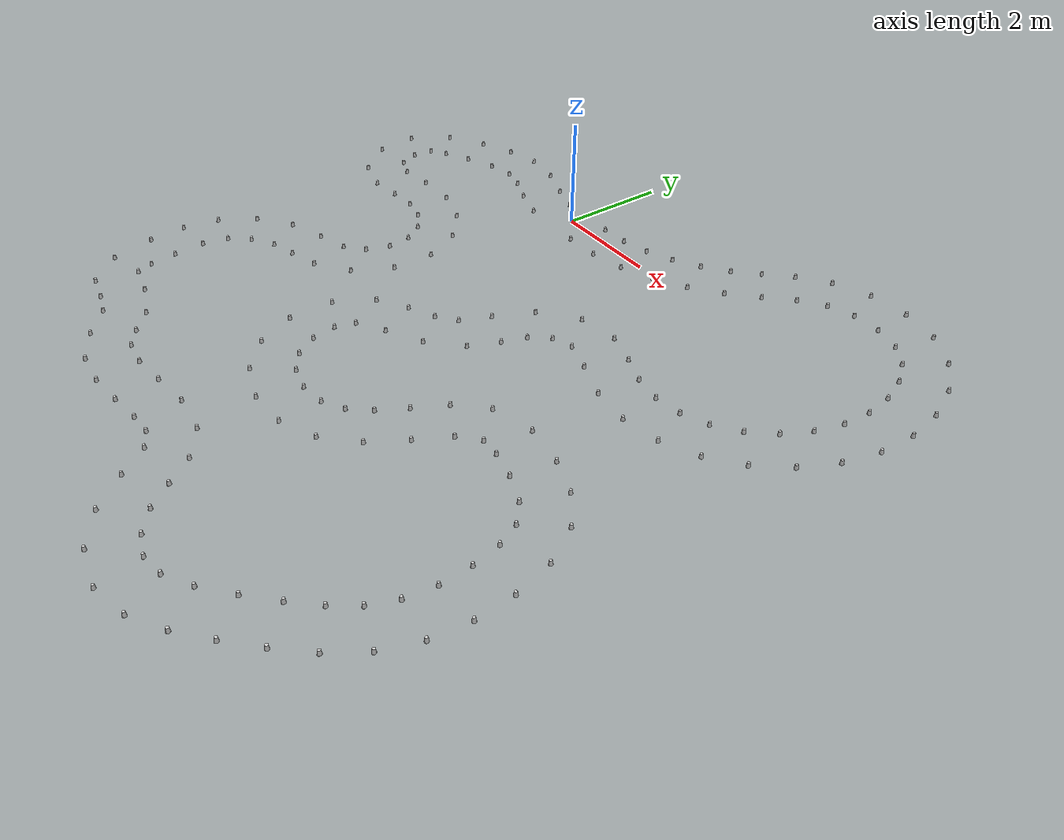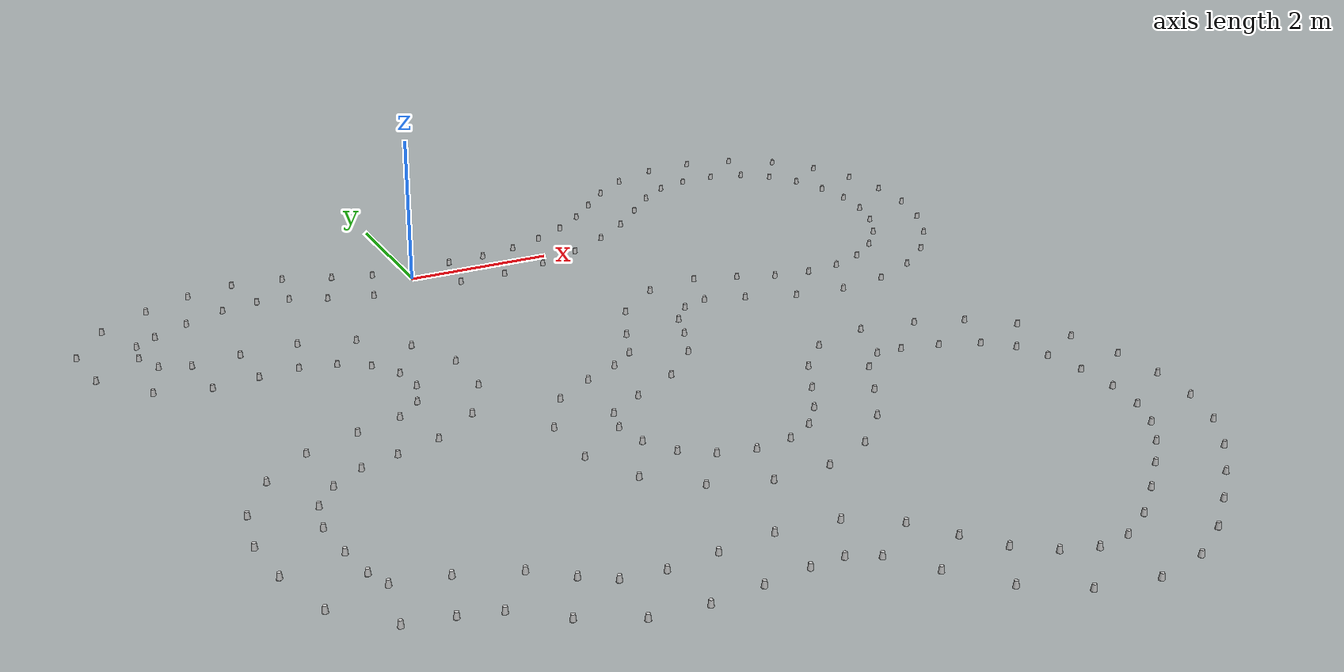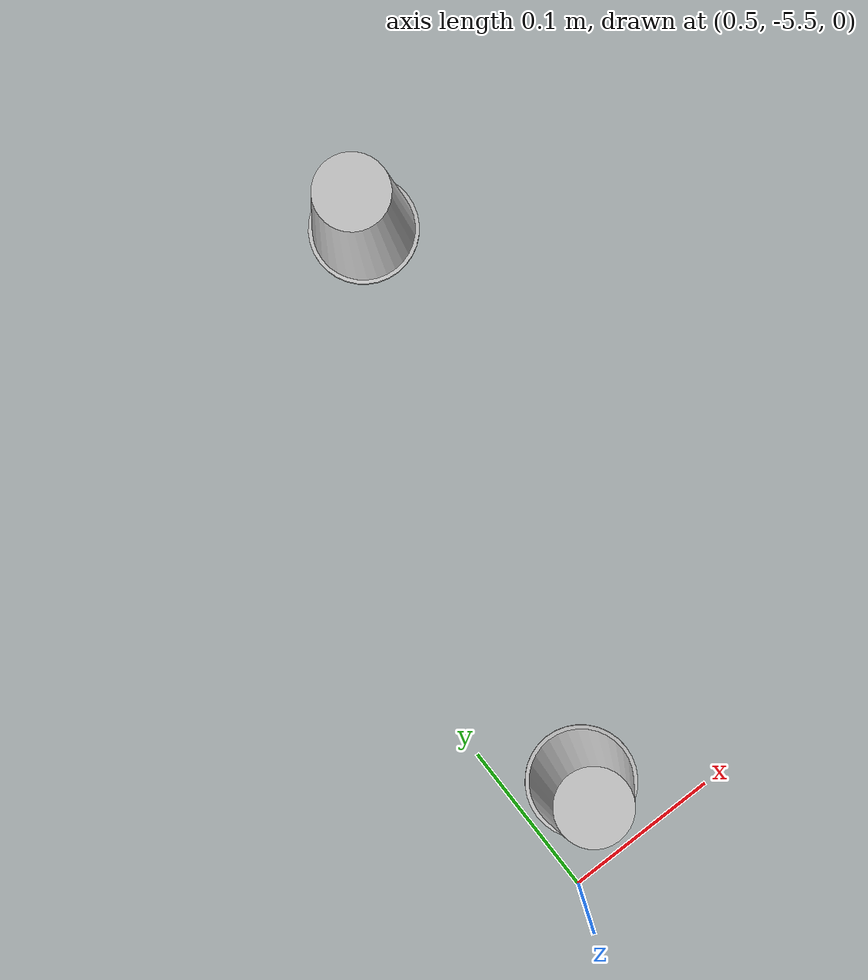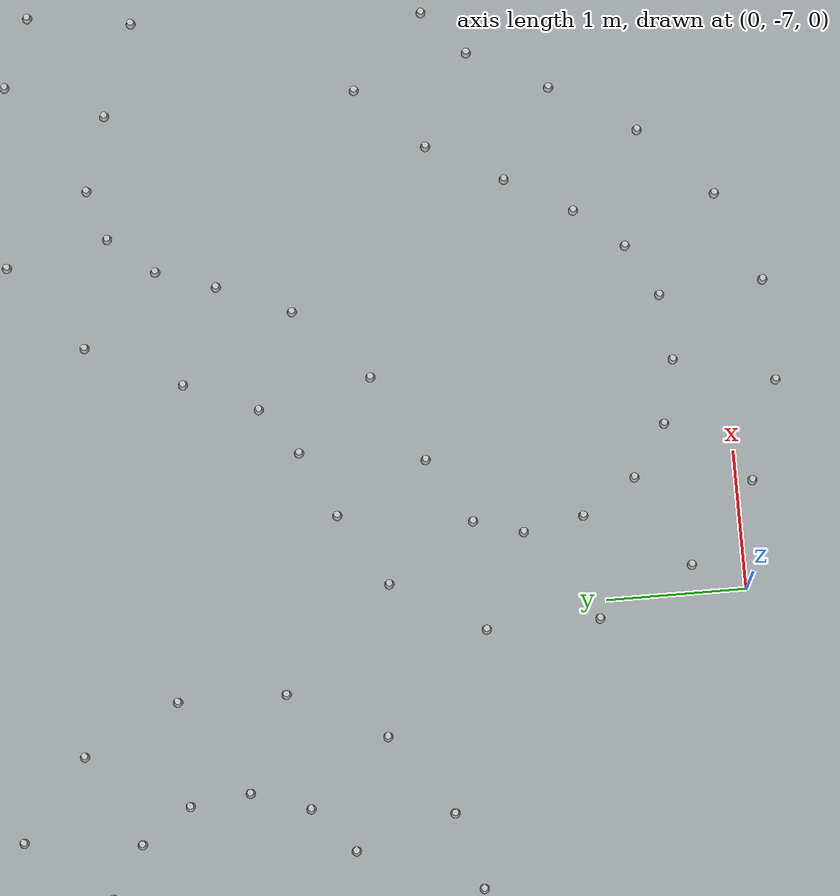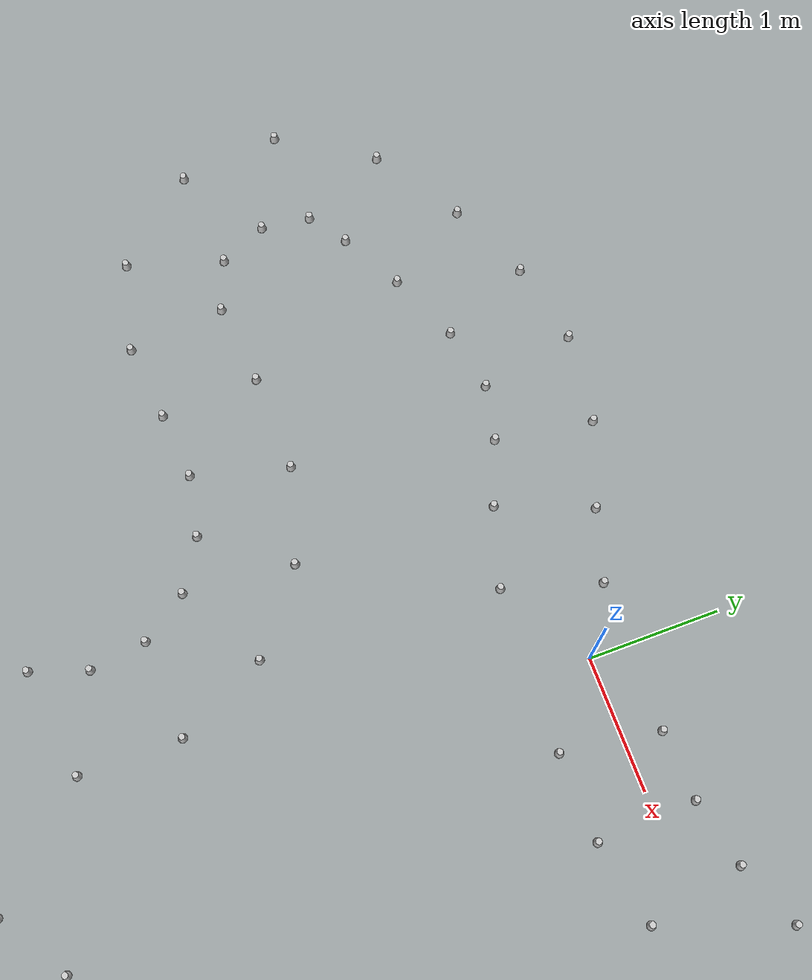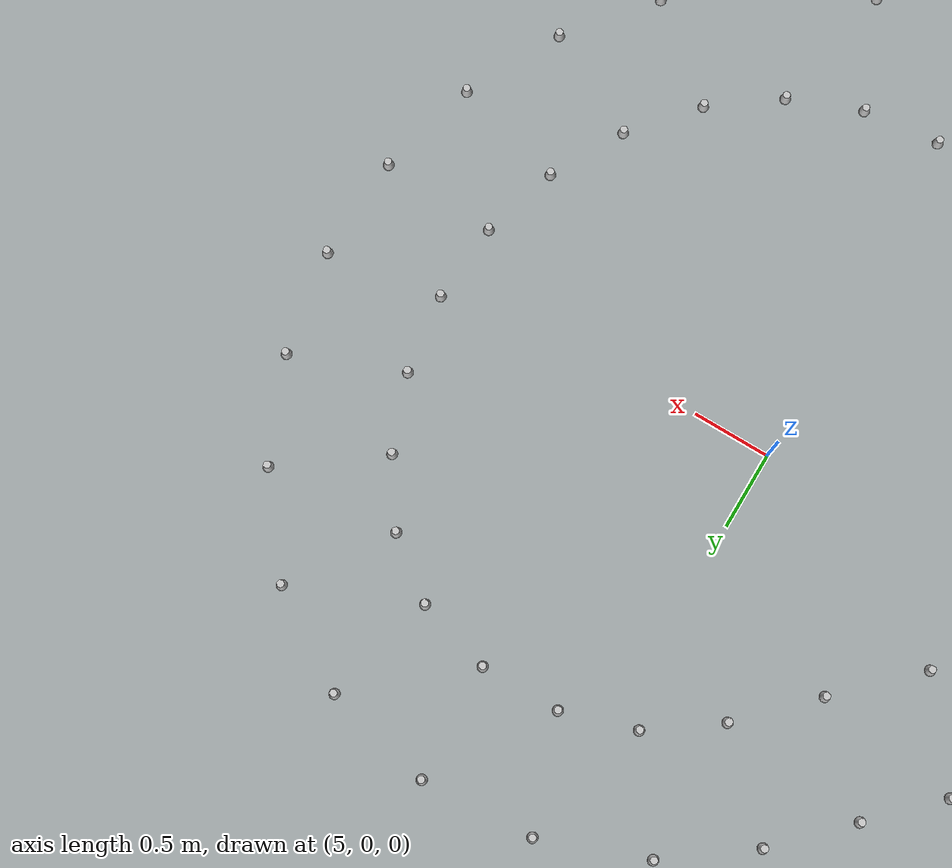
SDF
<?xml version='1.0' encoding='UTF-8'?>
<sdf version="1.4">
  <model name="some track">
    <include>
      <uri>model://cone_yellow</uri>
      <pose>0.5456064832074609 -0.45885860993376065 0 0 0 0</pose>
      <name>cone_right_0</name>
    </include>
    <include>
      <uri>model://cone_yellow</uri>
      <pose>1.2058946451928227 -0.44259092061318955 0 0 0 0</pose>
      <name>cone_right_1</name>
    </include>
    <include>
      <uri>model://cone_yellow</uri>
      <pose>1.8462565523455987 -0.3158791610961156 0 0 0 0</pose>
      <name>cone_right_2</name>
    </include>
    <include>
      <uri>model://cone_yellow</uri>
      <pose>2.4551261243802767 -0.08944282627658051 0 0 0 0</pose>
      <name>cone_right_3</name>
    </include>
    <include>
      <uri>model://cone_yellow</uri>
      <pose>3.022348377495846 0.22613101339088998 0 0 0 0</pose>
      <name>cone_right_4</name>
    </include>
    <include>
      <uri>model://cone_yellow</uri>
      <pose>3.5385810489900464 0.620887101249452 0 0 0 0</pose>
      <name>cone_right_5</name>
    </include>
    <include>
      <uri>model://cone_yellow</uri>
      <pose>3.9968567595910898 1.0767456319739033 0 0 0 0</pose>
      <name>cone_right_6</name>
    </include>
    <include>
      <uri>model://cone_yellow</uri>
      <pose>4.413884017450792 1.5049585792763076 0 0 0 0</pose>
      <name>cone_right_7</name>
    </include>
    <include>
      <uri>model://cone_yellow</uri>
      <pose>4.837387571227756 1.8125826950286892 0 0 0 0</pose>
      <name>cone_right_8</name>
    </include>
    <include>
      <uri>model://cone_yellow</uri>
      <pose>5.3068601934235655 1.9595061470124564 0 0 0 0</pose>
      <name>cone_right_9</name>
    </include>
    <include>
      <uri>model://cone_yellow</uri>
      <pose>5.819877320713445 1.9676282042649793 0 0 0 0</pose>
      <name>cone_right_10</name>
    </include>
    <include>
      <uri>model://cone_yellow</uri>
      <pose>6.303811697080914 1.829182384310644 0 0 0 0</pose>
      <name>cone_right_11</name>
    </include>
    <include>
      <uri>model://cone_yellow</uri>
      <pose>6.677501635294466 1.5498988169844365 0 0 0 0</pose>
      <name>cone_right_12</name>
    </include>
    <include>
      <uri>model://cone_yellow</uri>
      <pose>6.948446406135672 1.1561583997995557 0 0 0 0</pose>
      <name>cone_right_13</name>
    </include>
    <include>
      <uri>model://cone_yellow</uri>
      <pose>7.130245594376159 0.6777425470140594 0 0 0 0</pose>
      <name>cone_right_14</name>
    </include>
    <include>
      <uri>model://cone_yellow</uri>
      <pose>7.206664436980377 0.16683228925392393 0 0 0 0</pose>
      <name>cone_right_15</name>
    </include>
    <include>
      <uri>model://cone_yellow</uri>
      <pose>7.172176745271697 -0.3462398290659785 0 0 0 0</pose>
      <name>cone_right_16</name>
    </include>
    <include>
      <uri>model://cone_yellow</uri>
      <pose>7.027874995089416 -0.8456869484847873 0 0 0 0</pose>
      <name>cone_right_17</name>
    </include>
    <include>
      <uri>model://cone_yellow</uri>
      <pose>6.778135353807146 -1.3134792045880717 0 0 0 0</pose>
      <name>cone_right_18</name>
    </include>
    <include>
      <uri>model://cone_yellow</uri>
      <pose>6.43682481530975 -1.7195088541264256 0 0 0 0</pose>
      <name>cone_right_19</name>
    </include>
    <include>
      <uri>model://cone_yellow</uri>
      <pose>6.023866609306633 -2.0288480070229897 0 0 0 0</pose>
      <name>cone_right_20</name>
    </include>
    <include>
      <uri>model://cone_yellow</uri>
      <pose>5.561544178993173 -2.2127234131991527 0 0 0 0</pose>
      <name>cone_right_21</name>
    </include>
    <include>
      <uri>model://cone_yellow</uri>
      <pose>5.0681939940556555 -2.265051066441236 0 0 0 0</pose>
      <name>cone_right_22</name>
    </include>
    <include>
      <uri>model://cone_yellow</uri>
      <pose>4.566206799126477 -2.184642251498726 0 0 0 0</pose>
      <name>cone_right_23</name>
    </include>
    <include>
      <uri>model://cone_yellow</uri>
      <pose>4.067908418143249 -1.9850667389844467 0 0 0 0</pose>
      <name>cone_right_24</name>
    </include>
    <include>
      <uri>model://cone_yellow</uri>
      <pose>3.484192974822731 -1.8028277750342239 0 0 0 0</pose>
      <name>cone_right_25</name>
    </include>
    <include>
      <uri>model://cone_yellow</uri>
      <pose>2.7470825966537564 -1.9073172078231235 0 0 0 0</pose>
      <name>cone_right_26</name>
    </include>
    <include>
      <uri>model://cone_yellow</uri>
      <pose>2.1191800385688686 -2.4212307791150547 0 0 0 0</pose>
      <name>cone_right_27</name>
    </include>
    <include>
      <uri>model://cone_yellow</uri>
      <pose>1.7973649492020427 -3.104844454724684 0 0 0 0</pose>
      <name>cone_right_28</name>
    </include>
    <include>
      <uri>model://cone_yellow</uri>
      <pose>1.5741543913362073 -3.633427410084835 0 0 0 0</pose>
      <name>cone_right_29</name>
    </include>
    <include>
      <uri>model://cone_yellow</uri>
      <pose>1.2379331491129555 -3.896081157973365 0 0 0 0</pose>
      <name>cone_right_30</name>
    </include>
    <include>
      <uri>model://cone_yellow</uri>
      <pose>0.7654489003605556 -4.132633005867363 0 0 0 0</pose>
      <name>cone_right_31</name>
    </include>
    <include>
      <uri>model://cone_yellow</uri>
      <pose>0.24301136493267722 -4.463987009997558 0 0 0 0</pose>
      <name>cone_right_32</name>
    </include>
    <include>
      <uri>model://cone_yellow</uri>
      <pose>-0.13693885138106562 -5.1300015562304795 0 0 0 0</pose>
      <name>cone_right_33</name>
    </include>
    <include>
      <uri>model://cone_yellow</uri>
      <pose>-0.12433864593090588 -5.942980782134854 0 0 0 0</pose>
      <name>cone_right_34</name>
    </include>
    <include>
      <uri>model://cone_yellow</uri>
      <pose>0.20802041270777255 -6.628476398485541 0 0 0 0</pose>
      <name>cone_right_35</name>
    </include>
    <include>
      <uri>model://cone_yellow</uri>
      <pose>0.7804151812215796 -7.112048927235949 0 0 0 0</pose>
      <name>cone_right_36</name>
    </include>
    <include>
      <uri>model://cone_yellow</uri>
      <pose>1.494758312628898 -7.342594785150698 0 0 0 0</pose>
      <name>cone_right_37</name>
    </include>
    <include>
      <uri>model://cone_yellow</uri>
      <pose>2.2277120250991547 -7.313941708037844 0 0 0 0</pose>
      <name>cone_right_38</name>
    </include>
    <include>
      <uri>model://cone_yellow</uri>
      <pose>2.883687169097593 -7.023222759198303 0 0 0 0</pose>
      <name>cone_right_39</name>
    </include>
    <include>
      <uri>model://cone_yellow</uri>
      <pose>3.391840042198688 -6.508287281729905 0 0 0 0</pose>
      <name>cone_right_40</name>
    </include>
    <include>
      <uri>model://cone_yellow</uri>
      <pose>3.755498005441392 -5.898661309648358 0 0 0 0</pose>
      <name>cone_right_41</name>
    </include>
    <include>
      <uri>model://cone_yellow</uri>
      <pose>4.056619348948791 -5.327059766262954 0 0 0 0</pose>
      <name>cone_right_42</name>
    </include>
    <include>
      <uri>model://cone_yellow</uri>
      <pose>4.378523817275573 -5.025008410567977 0 0 0 0</pose>
      <name>cone_right_43</name>
    </include>
    <include>
      <uri>model://cone_yellow</uri>
      <pose>4.7298322353679545 -5.0392873106626475 0 0 0 0</pose>
      <name>cone_right_44</name>
    </include>
    <include>
      <uri>model://cone_yellow</uri>
      <pose>5.22955984500444 -5.151352718827979 0 0 0 0</pose>
      <name>cone_right_45</name>
    </include>
    <include>
      <uri>model://cone_yellow</uri>
      <pose>5.738650956603024 -5.3475772746737835 0 0 0 0</pose>
      <name>cone_right_46</name>
    </include>
    <include>
      <uri>model://cone_yellow</uri>
      <pose>6.080286141864676 -5.641639547801639 0 0 0 0</pose>
      <name>cone_right_47</name>
    </include>
    <include>
      <uri>model://cone_yellow</uri>
      <pose>6.26160515785707 -6.038643930826328 0 0 0 0</pose>
      <name>cone_right_48</name>
    </include>
    <include>
      <uri>model://cone_yellow</uri>
      <pose>6.369585504750976 -6.547196199405659 0 0 0 0</pose>
      <name>cone_right_49</name>
    </include>
    <include>
      <uri>model://cone_yellow</uri>
      <pose>6.4004852734699655 -7.097055363427831 0 0 0 0</pose>
      <name>cone_right_50</name>
    </include>
    <include>
      <uri>model://cone_yellow</uri>
      <pose>6.33263786887288 -7.613296777532562 0 0 0 0</pose>
      <name>cone_right_51</name>
    </include>
    <include>
      <uri>model://cone_yellow</uri>
      <pose>6.155221306788474 -8.059435363374728 0 0 0 0</pose>
      <name>cone_right_52</name>
    </include>
    <include>
      <uri>model://cone_yellow</uri>
      <pose>5.875613266661654 -8.459933798175832 0 0 0 0</pose>
      <name>cone_right_53</name>
    </include>
    <include>
      <uri>model://cone_yellow</uri>
      <pose>5.506138369861098 -8.863554232161913 0 0 0 0</pose>
      <name>cone_right_54</name>
    </include>
    <include>
      <uri>model://cone_yellow</uri>
      <pose>5.0738466779528615 -9.286633320658073 0 0 0 0</pose>
      <name>cone_right_55</name>
    </include>
    <include>
      <uri>model://cone_yellow</uri>
      <pose>4.61614365849807 -9.69342345992484 0 0 0 0</pose>
      <name>cone_right_56</name>
    </include>
    <include>
      <uri>model://cone_yellow</uri>
      <pose>4.1646400719272005 -9.96927439329815 0 0 0 0</pose>
      <name>cone_right_57</name>
    </include>
    <include>
      <uri>model://cone_yellow</uri>
      <pose>3.740880312766757 -10.035912061499928 0 0 0 0</pose>
      <name>cone_right_58</name>
    </include>
    <include>
      <uri>model://cone_yellow</uri>
      <pose>3.3311578378597386 -9.905237356893815 0 0 0 0</pose>
      <name>cone_right_59</name>
    </include>
    <include>
      <uri>model://cone_yellow</uri>
      <pose>2.9224059592686342 -9.618274471106918 0 0 0 0</pose>
      <name>cone_right_60</name>
    </include>
    <include>
      <uri>model://cone_yellow</uri>
      <pose>2.5947389030488264 -9.211484030070826 0 0 0 0</pose>
      <name>cone_right_61</name>
    </include>
    <include>
      <uri>model://cone_yellow</uri>
      <pose>2.2505193561998706 -8.757577432429349 0 0 0 0</pose>
      <name>cone_right_62</name>
    </include>
    <include>
      <uri>model://cone_yellow</uri>
      <pose>1.6796294860141991 -8.397974180417005 0 0 0 0</pose>
      <name>cone_right_63</name>
    </include>
    <include>
      <uri>model://cone_yellow</uri>
      <pose>0.9208425258512882 -8.325272682727089 0 0 0 0</pose>
      <name>cone_right_64</name>
    </include>
    <include>
      <uri>model://cone_yellow</uri>
      <pose>0.2107769366097395 -8.415570412688277 0 0 0 0</pose>
      <name>cone_right_65</name>
    </include>
    <include>
      <uri>model://cone_yellow</uri>
      <pose>-0.41296001121357795 -8.487455345299399 0 0 0 0</pose>
      <name>cone_right_66</name>
    </include>
    <include>
      <uri>model://cone_yellow</uri>
      <pose>-0.9166483209916548 -8.437162206217451 0 0 0 0</pose>
      <name>cone_right_67</name>
    </include>
    <include>
      <uri>model://cone_yellow</uri>
      <pose>-1.2689445915224533 -8.214419488021447 0 0 0 0</pose>
      <name>cone_right_68</name>
    </include>
    <include>
      <uri>model://cone_yellow</uri>
      <pose>-1.683120898302488 -7.87977260530645 0 0 0 0</pose>
      <name>cone_right_69</name>
    </include>
    <include>
      <uri>model://cone_yellow</uri>
      <pose>-2.3691679313059137 -7.6355491587899 0 0 0 0</pose>
      <name>cone_right_70</name>
    </include>
    <include>
      <uri>model://cone_yellow</uri>
      <pose>-2.986047128807216 -7.517420589268996 0 0 0 0</pose>
      <name>cone_right_71</name>
    </include>
    <include>
      <uri>model://cone_yellow</uri>
      <pose>-3.10017226932711 -7.228075015219288 0 0 0 0</pose>
      <name>cone_right_72</name>
    </include>
    <include>
      <uri>model://cone_yellow</uri>
      <pose>-3.176875098534503 -6.742390078540103 0 0 0 0</pose>
      <name>cone_right_73</name>
    </include>
    <include>
      <uri>model://cone_yellow</uri>
      <pose>-3.2257520181388313 -6.173822116496898 0 0 0 0</pose>
      <name>cone_right_74</name>
    </include>
    <include>
      <uri>model://cone_yellow</uri>
      <pose>-3.129951341632468 -5.7157304039537165 0 0 0 0</pose>
      <name>cone_right_75</name>
    </include>
    <include>
      <uri>model://cone_yellow</uri>
      <pose>-2.856906052109254 -5.364987443702813 0 0 0 0</pose>
      <name>cone_right_76</name>
    </include>
    <include>
      <uri>model://cone_yellow</uri>
      <pose>-2.4502488161782883 -5.095410652153637 0 0 0 0</pose>
      <name>cone_right_77</name>
    </include>
    <include>
      <uri>model://cone_yellow</uri>
      <pose>-1.9796634962335529 -4.9614223458641185 0 0 0 0</pose>
      <name>cone_right_78</name>
    </include>
    <include>
      <uri>model://cone_yellow</uri>
      <pose>-1.428191227449242 -4.7989485654888995 0 0 0 0</pose>
      <name>cone_right_79</name>
    </include>
    <include>
      <uri>model://cone_yellow</uri>
      <pose>-0.846746247916777 -4.368065878466941 0 0 0 0</pose>
      <name>cone_right_80</name>
    </include>
    <include>
      <uri>model://cone_yellow</uri>
      <pose>-0.4870201034719848 -3.67162034038072 0 0 0 0</pose>
      <name>cone_right_81</name>
    </include>
    <include>
      <uri>model://cone_yellow</uri>
      <pose>-0.4807219038941586 -2.8971700714950885 0 0 0 0</pose>
      <name>cone_right_82</name>
    </include>
    <include>
      <uri>model://cone_yellow</uri>
      <pose>-0.8167281480581794 -2.2085032531145603 0 0 0 0</pose>
      <name>cone_right_83</name>
    </include>
    <include>
      <uri>model://cone_yellow</uri>
      <pose>-1.3942061783787 -1.7363668728425148 0 0 0 0</pose>
      <name>cone_right_84</name>
    </include>
    <include>
      <uri>model://cone_yellow</uri>
      <pose>-2.1059099284937304 -1.5165638098566785 0 0 0 0</pose>
      <name>cone_right_85</name>
    </include>
    <include>
      <uri>model://cone_yellow</uri>
      <pose>-2.8490392582125454 -1.5308155001748993 0 0 0 0</pose>
      <name>cone_right_86</name>
    </include>
    <include>
      <uri>model://cone_yellow</uri>
      <pose>-3.478679634203818 -1.5923590858250192 0 0 0 0</pose>
      <name>cone_right_87</name>
    </include>
    <include>
      <uri>model://cone_yellow</uri>
      <pose>-3.858527809501271 -1.4429491110652737 0 0 0 0</pose>
      <name>cone_right_88</name>
    </include>
    <include>
      <uri>model://cone_yellow</uri>
      <pose>-4.02155601637582 -1.078399943451833 0 0 0 0</pose>
      <name>cone_right_89</name>
    </include>
    <include>
      <uri>model://cone_yellow</uri>
      <pose>-3.9720223825860668 -0.7052060486986893 0 0 0 0</pose>
      <name>cone_right_90</name>
    </include>
    <include>
      <uri>model://cone_yellow</uri>
      <pose>-3.692313053726679 -0.5072340666029056 0 0 0 0</pose>
      <name>cone_right_91</name>
    </include>
    <include>
      <uri>model://cone_yellow</uri>
      <pose>-3.2274931384944554 -0.256100276171534 0 0 0 0</pose>
      <name>cone_right_92</name>
    </include>
    <include>
      <uri>model://cone_yellow</uri>
      <pose>-2.686824364436386 -0.026004664943616584 0 0 0 0</pose>
      <name>cone_right_93</name>
    </include>
    <include>
      <uri>model://cone_yellow</uri>
      <pose>-2.1949203218323614 0.06692758537695942 0 0 0 0</pose>
      <name>cone_right_94</name>
    </include>
    <include>
      <uri>model://cone_yellow</uri>
      <pose>-1.7744877222165913 -0.02523319167466226 0 0 0 0</pose>
      <name>cone_right_95</name>
    </include>
    <include>
      <uri>model://cone_yellow</uri>
      <pose>-1.296995522609946 -0.22359371372142287 0 0 0 0</pose>
      <name>cone_right_96</name>
    </include>
    <include>
      <uri>model://cone_yellow</uri>
      <pose>-0.7013015661670496 -0.4077788620240781 0 0 0 0</pose>
      <name>cone_right_97</name>
    </include>
    <include>
      <uri>model://cone_blue</uri>
      <pose>0.6542295605776837 0.2832337206172448 0 0 0 0</pose>
      <name>cone_left_0</name>
    </include>
    <include>
      <uri>model://cone_blue</uri>
      <pose>1.1806175893615702 0.3069830053264096 0 0 0 0</pose>
      <name>cone_left_1</name>
    </include>
    <include>
      <uri>model://cone_blue</uri>
      <pose>1.6945912378009893 0.41862586432174 0 0 0 0</pose>
      <name>cone_left_2</name>
    </include>
    <include>
      <uri>model://cone_blue</uri>
      <pose>2.1885358040202956 0.6115775736336951 0 0 0 0</pose>
      <name>cone_left_3</name>
    </include>
    <include>
      <uri>model://cone_blue</uri>
      <pose>2.6534254896593383 0.8791209848532175 0 0 0 0</pose>
      <name>cone_left_4</name>
    </include>
    <include>
      <uri>model://cone_blue</uri>
      <pose>3.079421775259224 1.2139071357735678 0 0 0 0</pose>
      <name>cone_left_5</name>
    </include>
    <include>
      <uri>model://cone_blue</uri>
      <pose>3.465385822655569 1.605932407312138 0 0 0 0</pose>
      <name>cone_left_6</name>
    </include>
    <include>
      <uri>model://cone_blue</uri>
      <pose>3.876562438325861 2.0282037613914325 0 0 0 0</pose>
      <name>cone_left_7</name>
    </include>
    <include>
      <uri>model://cone_blue</uri>
      <pose>4.390998334584328 2.4152738675282515 0 0 0 0</pose>
      <name>cone_left_8</name>
    </include>
    <include>
      <uri>model://cone_blue</uri>
      <pose>5.058598836641597 2.667225228801817 0 0 0 0</pose>
      <name>cone_left_9</name>
    </include>
    <include>
      <uri>model://cone_blue</uri>
      <pose>5.784991293716834 2.716816408336821 0 0 0 0</pose>
      <name>cone_left_10</name>
    </include>
    <include>
      <uri>model://cone_blue</uri>
      <pose>6.487046404682359 2.5564547142739205 0 0 0 0</pose>
      <name>cone_left_11</name>
    </include>
    <include>
      <uri>model://cone_blue</uri>
      <pose>7.097180861365277 2.1714849712740936 0 0 0 0</pose>
      <name>cone_left_12</name>
    </include>
    <include>
      <uri>model://cone_blue</uri>
      <pose>7.547572148571262 1.6073217236092416 0 0 0 0</pose>
      <name>cone_left_13</name>
    </include>
    <include>
      <uri>model://cone_blue</uri>
      <pose>7.824663885542211 0.9610855139181649 0 0 0 0</pose>
      <name>cone_left_14</name>
    </include>
    <include>
      <uri>model://cone_blue</uri>
      <pose>7.946333866692097 0.2908852406494472 0 0 0 0</pose>
      <name>cone_left_15</name>
    </include>
    <include>
      <uri>model://cone_blue</uri>
      <pose>7.921234759754807 -0.3838176275462215 0 0 0 0</pose>
      <name>cone_left_16</name>
    </include>
    <include>
      <uri>model://cone_blue</uri>
      <pose>7.75174975223611 -1.041914714017126 0 0 0 0</pose>
      <name>cone_left_17</name>
    </include>
    <include>
      <uri>model://cone_blue</uri>
      <pose>7.44516588570416 -1.656364417913444 0 0 0 0</pose>
      <name>cone_left_18</name>
    </include>
    <include>
      <uri>model://cone_blue</uri>
      <pose>7.018277320719919 -2.1932313297936012 0 0 0 0</pose>
      <name>cone_left_19</name>
    </include>
    <include>
      <uri>model://cone_blue</uri>
      <pose>6.484509683918934 -2.620716199961017 0 0 0 0</pose>
      <name>cone_left_20</name>
    </include>
    <include>
      <uri>model://cone_blue</uri>
      <pose>5.856001804579097 -2.902502150718873 0 0 0 0</pose>
      <name>cone_left_21</name>
    </include>
    <include>
      <uri>model://cone_blue</uri>
      <pose>5.167744926400961 -3.0084147808295434 0 0 0 0</pose>
      <name>cone_left_22</name>
    </include>
    <include>
      <uri>model://cone_blue</uri>
      <pose>4.466836652373989 -2.9280301542348335 0 0 0 0</pose>
      <name>cone_left_23</name>
    </include>
    <include>
      <uri>model://cone_blue</uri>
      <pose>3.8018806251351753 -2.686300803578612 0 0 0 0</pose>
      <name>cone_left_24</name>
    </include>
    <include>
      <uri>model://cone_blue</uri>
      <pose>3.2614991492182606 -2.519003354091235 0 0 0 0</pose>
      <name>cone_left_25</name>
    </include>
    <include>
      <uri>model://cone_blue</uri>
      <pose>2.8988771802748543 -2.641795529071135 0 0 0 0</pose>
      <name>cone_left_26</name>
    </include>
    <include>
      <uri>model://cone_blue</uri>
      <pose>2.632712366687397 -2.967842659682212 0 0 0 0</pose>
      <name>cone_left_27</name>
    </include>
    <include>
      <uri>model://cone_blue</uri>
      <pose>2.489064948630227 -3.394760150731384 0 0 0 0</pose>
      <name>cone_left_28</name>
    </include>
    <include>
      <uri>model://cone_blue</uri>
      <pose>2.265077680147801 -3.9251893146881804 0 0 0 0</pose>
      <name>cone_left_29</name>
    </include>
    <include>
      <uri>model://cone_blue</uri>
      <pose>1.7451541337857808 -4.448554571548652 0 0 0 0</pose>
      <name>cone_left_30</name>
    </include>
    <include>
      <uri>model://cone_blue</uri>
      <pose>1.1165733785211478 -4.795363419260661 0 0 0 0</pose>
      <name>cone_left_31</name>
    </include>
    <include>
      <uri>model://cone_blue</uri>
      <pose>0.6459383053400185 -5.096561022026172 0 0 0 0</pose>
      <name>cone_left_32</name>
    </include>
    <include>
      <uri>model://cone_blue</uri>
      <pose>0.5404481637909697 -5.4519438362688755 0 0 0 0</pose>
      <name>cone_left_33</name>
    </include>
    <include>
      <uri>model://cone_blue</uri>
      <pose>0.6234650385995082 -5.885625316809073 0 0 0 0</pose>
      <name>cone_left_34</name>
    </include>
    <include>
      <uri>model://cone_blue</uri>
      <pose>0.8684710047875326 -6.2730822293979 0 0 0 0</pose>
      <name>cone_left_35</name>
    </include>
    <include>
      <uri>model://cone_blue</uri>
      <pose>1.2391788296929294 -6.51872278181401 0 0 0 0</pose>
      <name>cone_left_36</name>
    </include>
    <include>
      <uri>model://cone_blue</uri>
      <pose>1.6992576553767735 -6.621013175895246 0 0 0 0</pose>
      <name>cone_left_37</name>
    </include>
    <include>
      <uri>model://cone_blue</uri>
      <pose>2.175795052852125 -6.565740780483821 0 0 0 0</pose>
      <name>cone_left_38</name>
    </include>
    <include>
      <uri>model://cone_blue</uri>
      <pose>2.5536020132395594 -6.349766160832694 0 0 0 0</pose>
      <name>cone_left_39</name>
    </include>
    <include>
      <uri>model://cone_blue</uri>
      <pose>2.8396920160262344 -6.000712107796168 0 0 0 0</pose>
      <name>cone_left_40</name>
    </include>
    <include>
      <uri>model://cone_blue</uri>
      <pose>3.1066393802464627 -5.522519734559741 0 0 0 0</pose>
      <name>cone_left_41</name>
    </include>
    <include>
      <uri>model://cone_blue</uri>
      <pose>3.3928936311809657 -4.977820347563425 0 0 0 0</pose>
      <name>cone_left_42</name>
    </include>
    <include>
      <uri>model://cone_blue</uri>
      <pose>3.8454843318125653 -4.497401637547262 0 0 0 0</pose>
      <name>cone_left_43</name>
    </include>
    <include>
      <uri>model://cone_blue</uri>
      <pose>4.6076730157087695 -4.299302766869834 0 0 0 0</pose>
      <name>cone_left_44</name>
    </include>
    <include>
      <uri>model://cone_blue</uri>
      <pose>5.362522394998843 -4.413232836763428 0 0 0 0</pose>
      <name>cone_left_45</name>
    </include>
    <include>
      <uri>model://cone_blue</uri>
      <pose>6.000711065729101 -4.644850799290346 0 0 0 0</pose>
      <name>cone_left_46</name>
    </include>
    <include>
      <uri>model://cone_blue</uri>
      <pose>6.546145772951451 -5.053868500433963 0 0 0 0</pose>
      <name>cone_left_47</name>
    </include>
    <include>
      <uri>model://cone_blue</uri>
      <pose>6.920730662395948 -5.680798196932001 0 0 0 0</pose>
      <name>cone_left_48</name>
    </include>
    <include>
      <uri>model://cone_blue</uri>
      <pose>7.0991310626557915 -6.373232758012503 0 0 0 0</pose>
      <name>cone_left_49</name>
    </include>
    <include>
      <uri>model://cone_blue</uri>
      <pose>7.1488642044220745 -7.047770723762127 0 0 0 0</pose>
      <name>cone_left_50</name>
    </include>
    <include>
      <uri>model://cone_blue</uri>
      <pose>7.077379375462573 -7.701953916909573 0 0 0 0</pose>
      <name>cone_left_51</name>
    </include>
    <include>
      <uri>model://cone_blue</uri>
      <pose>6.858069570401844 -8.321168659566993 0 0 0 0</pose>
      <name>cone_left_52</name>
    </include>
    <include>
      <uri>model://cone_blue</uri>
      <pose>6.499299068623126 -8.87648634039791 0 0 0 0</pose>
      <name>cone_left_53</name>
    </include>
    <include>
      <uri>model://cone_blue</uri>
      <pose>6.062990025368412 -9.365964655778665 0 0 0 0</pose>
      <name>cone_left_54</name>
    </include>
    <include>
      <uri>model://cone_blue</uri>
      <pose>5.599051597973327 -9.822039514109637 0 0 0 0</pose>
      <name>cone_left_55</name>
    </include>
    <include>
      <uri>model://cone_blue</uri>
      <pose>5.114780899727347 -10.253656359404385 0 0 0 0</pose>
      <name>cone_left_56</name>
    </include>
    <include>
      <uri>model://cone_blue</uri>
      <pose>4.562083224760139 -10.605308150473203 0 0 0 0</pose>
      <name>cone_left_57</name>
    </include>
    <include>
      <uri>model://cone_blue</uri>
      <pose>3.8964093538207614 -10.769608672769753 0 0 0 0</pose>
      <name>cone_left_58</name>
    </include>
    <include>
      <uri>model://cone_blue</uri>
      <pose>3.162306581019276 -10.635983039784515 0 0 0 0</pose>
      <name>cone_left_59</name>
    </include>
    <include>
      <uri>model://cone_blue</uri>
      <pose>2.5185056241059454 -10.250227411803824 0 0 0 0</pose>
      <name>cone_left_60</name>
    </include>
    <include>
      <uri>model://cone_blue</uri>
      <pose>2.0253590832549335 -9.699650621319629 0 0 0 0</pose>
      <name>cone_left_61</name>
    </include>
    <include>
      <uri>model://cone_blue</uri>
      <pose>1.653438545827401 -9.211443608614529 0 0 0 0</pose>
      <name>cone_left_62</name>
    </include>
    <include>
      <uri>model://cone_blue</uri>
      <pose>1.308596781637095 -9.049767654059242 0 0 0 0</pose>
      <name>cone_left_63</name>
    </include>
    <include>
      <uri>model://cone_blue</uri>
      <pose>0.8903991475590005 -9.074654561823557 0 0 0 0</pose>
      <name>cone_left_64</name>
    </include>
    <include>
      <uri>model://cone_blue</uri>
      <pose>0.3113484153868977 -9.158796742722794 0 0 0 0</pose>
      <name>cone_left_65</name>
    </include>
    <include>
      <uri>model://cone_blue</uri>
      <pose>-0.32700595068811444 -9.232513664814846 0 0 0 0</pose>
      <name>cone_left_66</name>
    </include>
    <include>
      <uri>model://cone_blue</uri>
      <pose>-0.9801737482767284 -9.184467043675532 0 0 0 0</pose>
      <name>cone_left_67</name>
    </include>
    <include>
      <uri>model://cone_blue</uri>
      <pose>-1.6223455773494948 -8.875938756989838 0 0 0 0</pose>
      <name>cone_left_68</name>
    </include>
    <include>
      <uri>model://cone_blue</uri>
      <pose>-2.147967735984128 -8.468344960669306 0 0 0 0</pose>
      <name>cone_left_69</name>
    </include>
    <include>
      <uri>model://cone_blue</uri>
      <pose>-2.597313584114929 -8.350006688041534 0 0 0 0</pose>
      <name>cone_left_70</name>
    </include>
    <include>
      <uri>model://cone_blue</uri>
      <pose>-3.123698322204588 -8.25468048167891 0 0 0 0</pose>
      <name>cone_left_71</name>
    </include>
    <include>
      <uri>model://cone_blue</uri>
      <pose>-3.6863945343009896 -7.695882086616134 0 0 0 0</pose>
      <name>cone_left_72</name>
    </include>
    <include>
      <uri>model://cone_blue</uri>
      <pose>-3.9070616985505024 -6.913642900873269 0 0 0 0</pose>
      <name>cone_left_73</name>
    </include>
    <include>
      <uri>model://cone_blue</uri>
      <pose>-3.972578054091859 -6.242748686284515 0 0 0 0</pose>
      <name>cone_left_74</name>
    </include>
    <include>
      <uri>model://cone_blue</uri>
      <pose>-3.868197479548541 -5.583470660070698 0 0 0 0</pose>
      <name>cone_left_75</name>
    </include>
    <include>
      <uri>model://cone_blue</uri>
      <pose>-3.4799314971167723 -4.9474478708798495 0 0 0 0</pose>
      <name>cone_left_76</name>
    </include>
    <include>
      <uri>model://cone_blue</uri>
      <pose>-2.8931180941524857 -4.49012823656021 0 0 0 0</pose>
      <name>cone_left_77</name>
    </include>
    <include>
      <uri>model://cone_blue</uri>
      <pose>-2.2123157711440284 -4.2484195976373105 0 0 0 0</pose>
      <name>cone_left_78</name>
    </include>
    <include>
      <uri>model://cone_blue</uri>
      <pose>-1.6403396691098977 -4.079578675445568 0 0 0 0</pose>
      <name>cone_left_79</name>
    </include>
    <include>
      <uri>model://cone_blue</uri>
      <pose>-1.3163818298519394 -3.783307449557685 0 0 0 0</pose>
      <name>cone_left_80</name>
    </include>
    <include>
      <uri>model://cone_blue</uri>
      <pose>-1.170275143551782 -3.362326709334824 0 0 0 0</pose>
      <name>cone_left_81</name>
    </include>
    <include>
      <uri>model://cone_blue</uri>
      <pose>-1.2299878875279273 -2.9303436418383746 0 0 0 0</pose>
      <name>cone_left_82</name>
    </include>
    <include>
      <uri>model://cone_blue</uri>
      <pose>-1.473116329708077 -2.571345581117153 0 0 0 0</pose>
      <name>cone_left_83</name>
    </include>
    <include>
      <uri>model://cone_blue</uri>
      <pose>-1.8424537268514969 -2.3376772214048254 0 0 0 0</pose>
      <name>cone_left_84</name>
    </include>
    <include>
      <uri>model://cone_blue</uri>
      <pose>-2.3018510857536976 -2.2405161997910064 0 0 0 0</pose>
      <name>cone_left_85</name>
    </include>
    <include>
      <uri>model://cone_blue</uri>
      <pose>-2.8169614694651677 -2.28012919647911 0 0 0 0</pose>
      <name>cone_left_86</name>
    </include>
    <include>
      <uri>model://cone_blue</uri>
      <pose>-3.405036461478727 -2.3387347841907835 0 0 0 0</pose>
      <name>cone_left_87</name>
    </include>
    <include>
      <uri>model://cone_blue</uri>
      <pose>-4.081622124444647 -2.159000035678842 0 0 0 0</pose>
      <name>cone_left_88</name>
    </include>
    <include>
      <uri>model://cone_blue</uri>
      <pose>-4.634029435978556 -1.5112697971955773 0 0 0 0</pose>
      <name>cone_left_89</name>
    </include>
    <include>
      <uri>model://cone_blue</uri>
      <pose>-4.721615365892754 -0.7299115010803068 0 0 0 0</pose>
      <name>cone_left_90</name>
    </include>
    <include>
      <uri>model://cone_blue</uri>
      <pose>-4.27411774175815 -0.033944192440566845 0 0 0 0</pose>
      <name>cone_left_91</name>
    </include>
    <include>
      <uri>model://cone_blue</uri>
      <pose>-3.611999359394718 0.3878368062278246 0 0 0 0</pose>
      <name>cone_left_92</name>
    </include>
    <include>
      <uri>model://cone_blue</uri>
      <pose>-2.9842577136218735 0.6624961722325657 0 0 0 0</pose>
      <name>cone_left_93</name>
    </include>
    <include>
      <uri>model://cone_blue</uri>
      <pose>-2.345729094422545 0.801608954481854 0 0 0 0</pose>
      <name>cone_left_94</name>
    </include>
    <include>
      <uri>model://cone_blue</uri>
      <pose>-1.6554774653521591 0.7152643159248311 0 0 0 0</pose>
      <name>cone_left_95</name>
    </include>
    <include>
      <uri>model://cone_blue</uri>
      <pose>-1.021125785742097 0.47382716944774605 0 0 0 0</pose>
      <name>cone_left_96</name>
    </include>
    <include>
      <uri>model://cone_blue</uri>
      <pose>-0.48108715359792087 0.30916298533652453 0 0 0 0</pose>
      <name>cone_left_97</name>
    </include>
  </model>
</sdf>

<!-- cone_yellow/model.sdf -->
<sdf version='1.4'>
  <model name="cone_yellow">
    <link name="link">
    <collision name="collision"><geometry><box><size> 0.05 0.05 0.01</size>
             </box></geometry></collision>
      <visual name="visual">
        <geometry>
          <mesh>
            <uri>model://cup.dae</uri>
            <scale>1 1 1</scale>
          </mesh>
        </geometry>
        <material>
            <script>
              <uri>model://cone_yellow/materials/scripts</uri>
              <uri>model://cone_yellow/materials/textures</uri>
              <name>cone_yellow/Image</name>
            </script>
        </material>
      </visual>
    </link>
  </model>
</sdf>

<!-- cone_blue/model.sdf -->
<sdf version='1.4'>
  <model name="cone_blue">
    <link name="link">
    <collision name="collision"><geometry><box><size> 0.05 0.05 0.01</size>
             </box></geometry></collision>
      <visual name="visual">
        <geometry>
          <mesh>
            <uri>model://cup.dae</uri>
            <scale>1 1 1</scale>
          </mesh>
        </geometry>
        <material>
            <script>
              <uri>model://cone_blue/materials/scripts</uri>
              <uri>model://cone_blue/materials/textures</uri>
              <name>cone_blue/Image</name>
            </script>
        </material>
      </visual>
    </link>
  </model>
</sdf>
